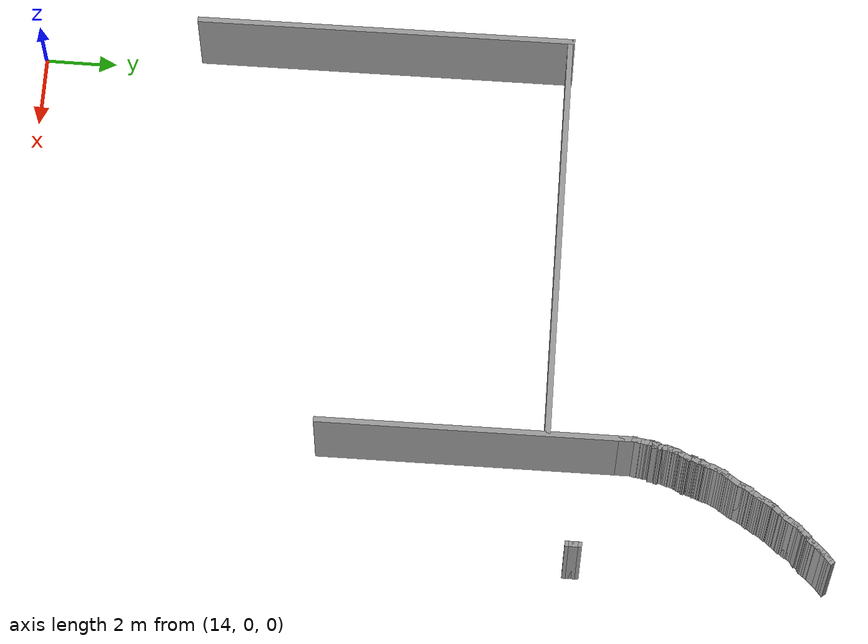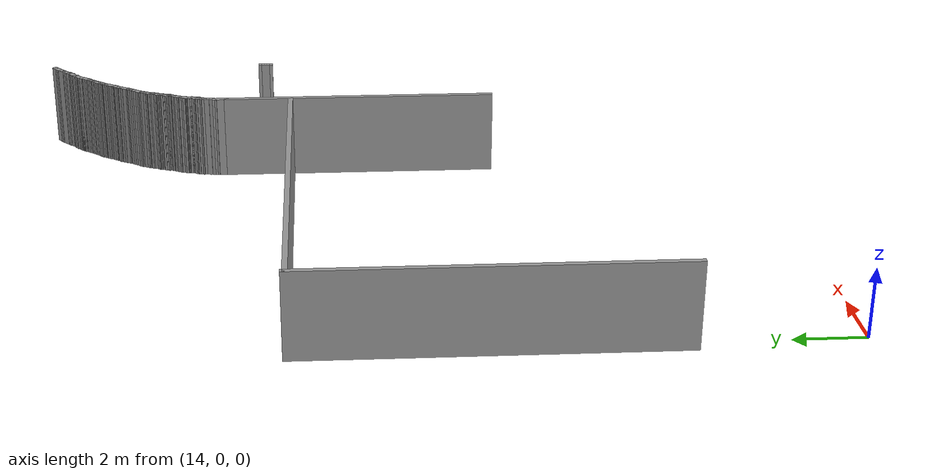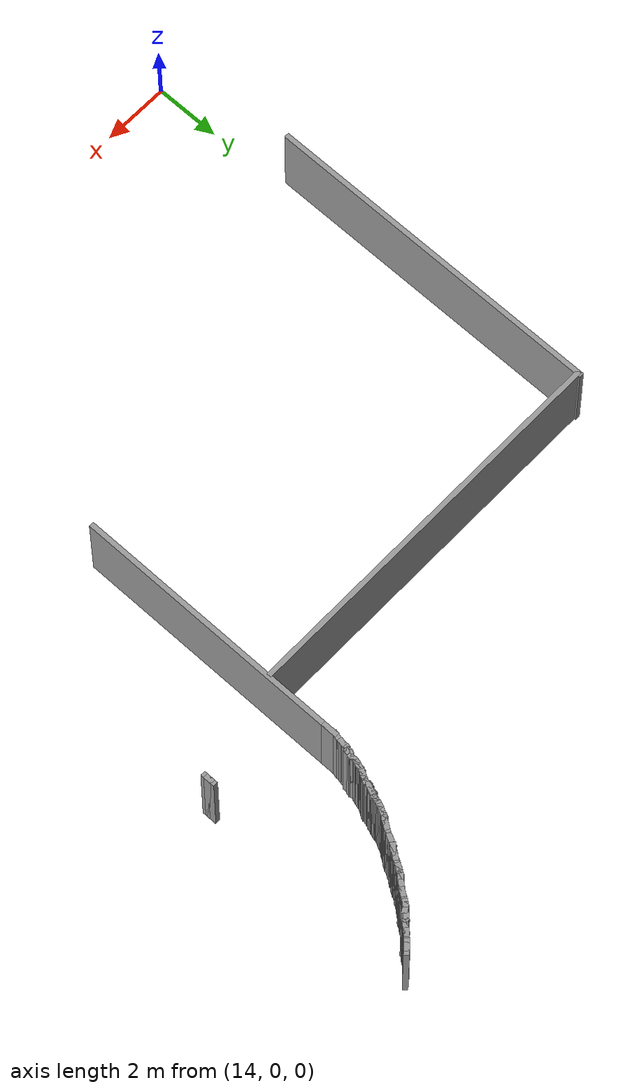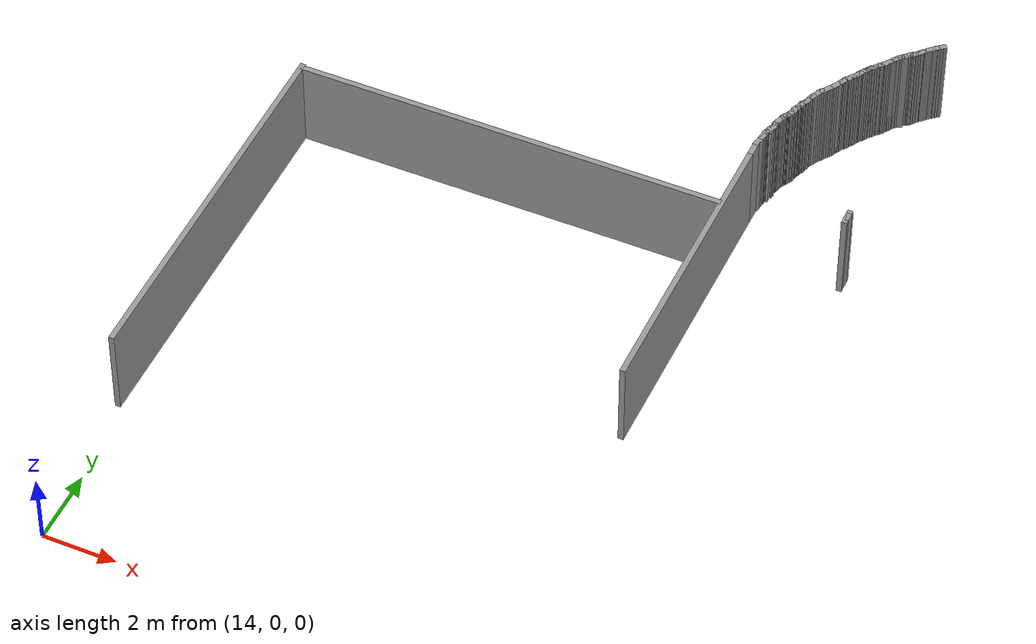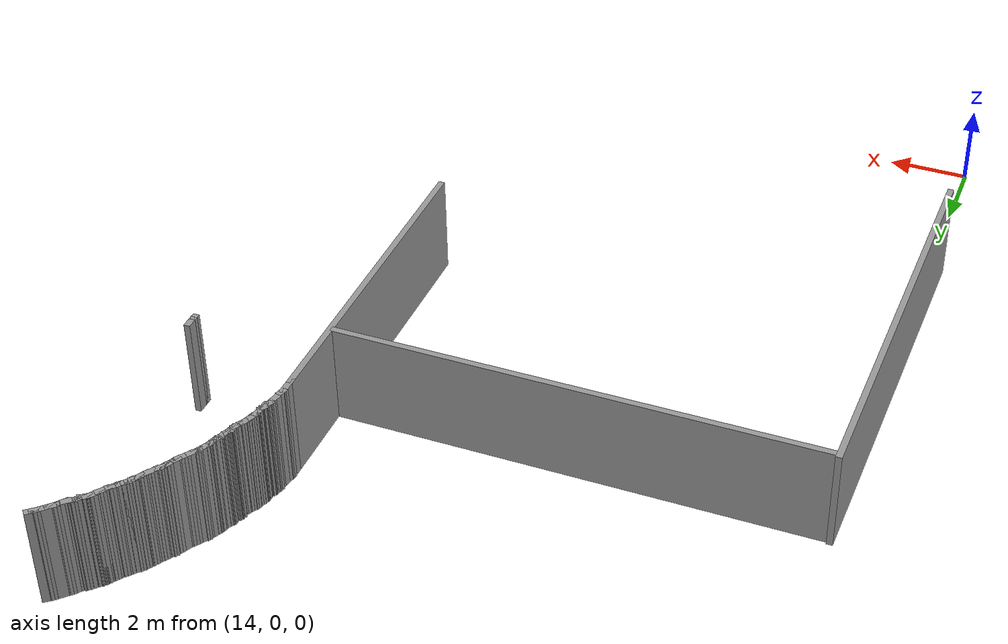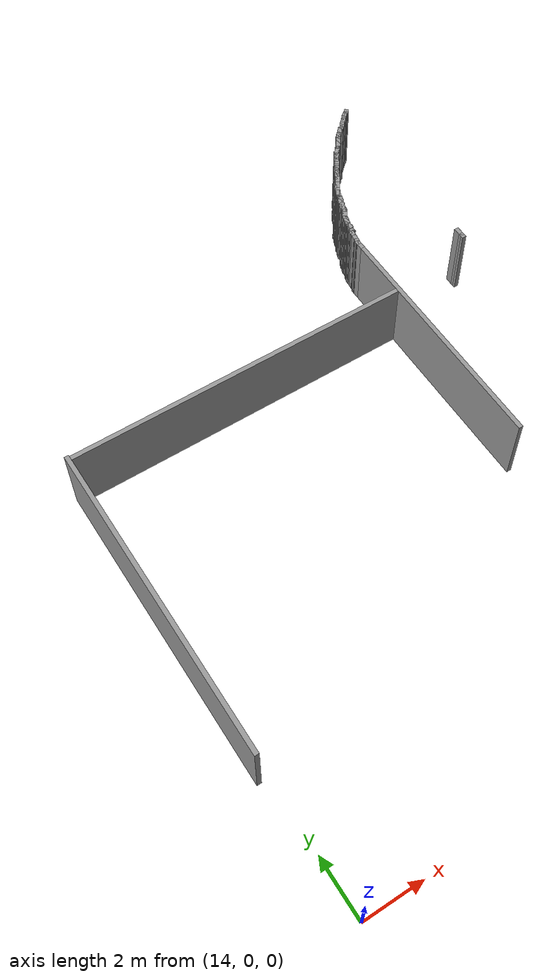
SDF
<sdf version="1.6">
 <model name="draft3">
  <pose>34.2026 -2.81154 0 0 -0 0</pose>
  <link name="Wall_100">
   <collision name="Wall_100_Collision">
    <geometry><box><size>0.221219 0.15 2.5</size></box></geometry>
    <pose>0 0 1.25 0 -0 0</pose>
   </collision>
   <visual name="Wall_100_Visual">
    <pose>0 0 1.25 0 -0 0</pose>
    <geometry><box><size>0.221219 0.15 2.5</size></box></geometry>
    <material>
     <script><uri>file://media/materials/scripts/gazebo.material</uri><name>Gazebo/Grey</name></script>
     <ambient>1 1 1 1</ambient>
    </material>
   </visual>
   <pose>-8.14008 22.0271 0 0 -0 1.19029</pose>
  </link>
  <link name="Wall_101">
   <collision name="Wall_101_Collision">
    <geometry><box><size>0.238716 0.15 2.5</size></box></geometry>
    <pose>0 0 1.25 0 -0 0</pose>
   </collision>
   <visual name="Wall_101_Visual">
    <pose>0 0 1.25 0 -0 0</pose>
    <geometry><box><size>0.238716 0.15 2.5</size></box></geometry>
    <material>
     <script><uri>file://media/materials/scripts/gazebo.material</uri><name>Gazebo/Grey</name></script>
     <ambient>1 1 1 1</ambient>
    </material>
   </visual>
   <pose>-8.10702 22.0998 0 0 -0 1.10715</pose>
  </link>
  <link name="Wall_102">
   <collision name="Wall_102_Collision">
    <geometry><box><size>0.238716 0.15 2.5</size></box></geometry>
    <pose>0 0 1.25 0 -0 0</pose>
   </collision>
   <visual name="Wall_102_Visual">
    <pose>0 0 1.25 0 -0 0</pose>
    <geometry><box><size>0.238716 0.15 2.5</size></box></geometry>
    <material>
     <script><uri>file://media/materials/scripts/gazebo.material</uri><name>Gazebo/Grey</name></script>
     <ambient>1 1 1 1</ambient>
    </material>
   </visual>
   <pose>-8.06734 22.1792 0 0 -0 1.10715</pose>
  </link>
  <link name="Wall_103">
   <collision name="Wall_103_Collision">
    <geometry><box><size>0.250719 0.15 2.5</size></box></geometry>
    <pose>0 0 1.25 0 -0 0</pose>
   </collision>
   <visual name="Wall_103_Visual">
    <pose>0 0 1.25 0 -0 0</pose>
    <geometry><box><size>0.250719 0.15 2.5</size></box></geometry>
    <material>
     <script><uri>file://media/materials/scripts/gazebo.material</uri><name>Gazebo/Grey</name></script>
     <ambient>1 1 1 1</ambient>
    </material>
   </visual>
   <pose>-8.02767 22.2651 0 0 -0 1.1659</pose>
  </link>
  <link name="Wall_104">
   <collision name="Wall_104_Collision">
    <geometry><box><size>0.206109 0.15 2.5</size></box></geometry>
    <pose>0 0 1.25 0 -0 0</pose>
   </collision>
   <visual name="Wall_104_Visual">
    <pose>0 0 1.25 0 -0 0</pose>
    <geometry><box><size>0.206109 0.15 2.5</size></box></geometry>
    <material>
     <script><uri>file://media/materials/scripts/gazebo.material</uri><name>Gazebo/Grey</name></script>
     <ambient>1 1 1 1</ambient>
    </material>
   </visual>
   <pose>-7.98799 22.3312 0 0 -0 0.785398</pose>
  </link>
  <link name="Wall_105">
   <collision name="Wall_105_Collision">
    <geometry><box><size>0.263766 0.15 2.5</size></box></geometry>
    <pose>0 0 1.25 0 -0 0</pose>
   </collision>
   <visual name="Wall_105_Visual">
    <pose>0 0 1.25 0 -0 0</pose>
    <geometry><box><size>0.263766 0.15 2.5</size></box></geometry>
    <material>
     <script><uri>file://media/materials/scripts/gazebo.material</uri><name>Gazebo/Grey</name></script>
     <ambient>1 1 1 1</ambient>
    </material>
   </visual>
   <pose>-7.93509 22.3974 0 0 -0 0.950547</pose>
  </link>
  <link name="Wall_106">
   <collision name="Wall_106_Collision">
    <geometry><box><size>0.29305 0.15 2.5</size></box></geometry>
    <pose>0 0 1.25 0 -0 0</pose>
   </collision>
   <visual name="Wall_106_Visual">
    <pose>0 0 1.25 0 -0 0</pose>
    <geometry><box><size>0.29305 0.15 2.5</size></box></geometry>
    <material>
     <script><uri>file://media/materials/scripts/gazebo.material</uri><name>Gazebo/Grey</name></script>
     <ambient>1 1 1 1</ambient>
    </material>
   </visual>
   <pose>-7.86235 22.5032 0 0 -0 0.982794</pose>
  </link>
  <link name="Wall_107">
   <collision name="Wall_107_Collision">
    <geometry><box><size>0.263766 0.15 2.5</size></box></geometry>
    <pose>0 0 1.25 0 -0 0</pose>
   </collision>
   <visual name="Wall_107_Visual">
    <pose>0 0 1.25 0 -0 0</pose>
    <geometry><box><size>0.263766 0.15 2.5</size></box></geometry>
    <material>
     <script><uri>file://media/materials/scripts/gazebo.material</uri><name>Gazebo/Grey</name></script>
     <ambient>1 1 1 1</ambient>
    </material>
   </visual>
   <pose>-7.78962 22.609 0 0 -0 0.950547</pose>
  </link>
  <link name="Wall_108">
   <collision name="Wall_108_Collision">
    <geometry><box><size>0.268288 0.15 2.5</size></box></geometry>
    <pose>0 0 1.25 0 -0 0</pose>
   </collision>
   <visual name="Wall_108_Visual">
    <pose>0 0 1.25 0 -0 0</pose>
    <geometry><box><size>0.268288 0.15 2.5</size></box></geometry>
    <material>
     <script><uri>file://media/materials/scripts/gazebo.material</uri><name>Gazebo/Grey</name></script>
     <ambient>1 1 1 1</ambient>
    </material>
   </visual>
   <pose>-7.7301 22.7082 0 0 -0 1.10715</pose>
  </link>
  <link name="Wall_109">
   <collision name="Wall_109_Collision">
    <geometry><box><size>0.268288 0.15 2.5</size></box></geometry>
    <pose>0 0 1.25 0 -0 0</pose>
   </collision>
   <visual name="Wall_109_Visual">
    <pose>0 0 1.25 0 -0 0</pose>
    <geometry><box><size>0.268288 0.15 2.5</size></box></geometry>
    <material>
     <script><uri>file://media/materials/scripts/gazebo.material</uri><name>Gazebo/Grey</name></script>
     <ambient>1 1 1 1</ambient>
    </material>
   </visual>
   <pose>-7.6772 22.814 0 0 -0 1.10715</pose>
  </link>
  <link name="Wall_110">
   <collision name="Wall_110_Collision">
    <geometry><box><size>0.227114 0.15 2.5</size></box></geometry>
    <pose>0 0 1.25 0 -0 0</pose>
   </collision>
   <visual name="Wall_110_Visual">
    <pose>0 0 1.25 0 -0 0</pose>
    <geometry><box><size>0.227114 0.15 2.5</size></box></geometry>
    <material>
     <script><uri>file://media/materials/scripts/gazebo.material</uri><name>Gazebo/Grey</name></script>
     <ambient>1 1 1 1</ambient>
    </material>
   </visual>
   <pose>-7.63091 22.8999 0 0 -0 1.03038</pose>
  </link>
  <link name="Wall_111">
   <collision name="Wall_111_Collision">
    <geometry><box><size>0.221219 0.15 2.5</size></box></geometry>
    <pose>0 0 1.25 0 -0 0</pose>
   </collision>
   <visual name="Wall_111_Visual">
    <pose>0 0 1.25 0 -0 0</pose>
    <geometry><box><size>0.221219 0.15 2.5</size></box></geometry>
    <material>
     <script><uri>file://media/materials/scripts/gazebo.material</uri><name>Gazebo/Grey</name></script>
     <ambient>1 1 1 1</ambient>
    </material>
   </visual>
   <pose>-7.59785 22.966 0 0 -0 1.19029</pose>
  </link>
  <link name="Wall_112">
   <collision name="Wall_112_Collision">
    <geometry><box><size>0.262218 0.15 2.5</size></box></geometry>
    <pose>0 0 1.25 0 -0 0</pose>
   </collision>
   <visual name="Wall_112_Visual">
    <pose>0 0 1.25 0 -0 0</pose>
    <geometry><box><size>0.262218 0.15 2.5</size></box></geometry>
    <material>
     <script><uri>file://media/materials/scripts/gazebo.material</uri><name>Gazebo/Grey</name></script>
     <ambient>1 1 1 1</ambient>
    </material>
   </visual>
   <pose>-7.54495 23.0388 0 0 -0 0.785398</pose>
  </link>
  <link name="Wall_113">
   <collision name="Wall_113_Collision">
    <geometry><box><size>0.256623 0.15 2.5</size></box></geometry>
    <pose>0 0 1.25 0 -0 0</pose>
   </collision>
   <visual name="Wall_113_Visual">
    <pose>0 0 1.25 0 -0 0</pose>
    <geometry><box><size>0.256623 0.15 2.5</size></box></geometry>
    <material>
     <script><uri>file://media/materials/scripts/gazebo.material</uri><name>Gazebo/Grey</name></script>
     <ambient>1 1 1 1</ambient>
    </material>
   </visual>
   <pose>-7.47883 23.1247 0 0 -0 1.05165</pose>
  </link>
  <link name="Wall_114">
   <collision name="Wall_114_Collision">
    <geometry><box><size>0.28225 0.15 2.5</size></box></geometry>
    <pose>0 0 1.25 0 -0 0</pose>
   </collision>
   <visual name="Wall_114_Visual">
    <pose>0 0 1.25 0 -0 0</pose>
    <geometry><box><size>0.28225 0.15 2.5</size></box></geometry>
    <material>
     <script><uri>file://media/materials/scripts/gazebo.material</uri><name>Gazebo/Grey</name></script>
     <ambient>1 1 1 1</ambient>
    </material>
   </visual>
   <pose>-7.4127 23.2239 0 0 -0 0.927295</pose>
  </link>
  <link name="Wall_115">
   <collision name="Wall_115_Collision">
    <geometry><box><size>0.268288 0.15 2.5</size></box></geometry>
    <pose>0 0 1.25 0 -0 0</pose>
   </collision>
   <visual name="Wall_115_Visual">
    <pose>0 0 1.25 0 -0 0</pose>
    <geometry><box><size>0.268288 0.15 2.5</size></box></geometry>
    <material>
     <script><uri>file://media/materials/scripts/gazebo.material</uri><name>Gazebo/Grey</name></script>
     <ambient>1 1 1 1</ambient>
    </material>
   </visual>
   <pose>-7.34658 23.3297 0 0 -0 1.10715</pose>
  </link>
  <link name="Wall_116">
   <collision name="Wall_116_Collision">
    <geometry><box><size>0.245367 0.15 2.5</size></box></geometry>
    <pose>0 0 1.25 0 -0 0</pose>
   </collision>
   <visual name="Wall_116_Visual">
    <pose>0 0 1.25 0 -0 0</pose>
    <geometry><box><size>0.245367 0.15 2.5</size></box></geometry>
    <material>
     <script><uri>file://media/materials/scripts/gazebo.material</uri><name>Gazebo/Grey</name></script>
     <ambient>1 1 1 1</ambient>
    </material>
   </visual>
   <pose>-7.29368 23.4223 0 0 -0 0.982794</pose>
  </link>
  <link name="Wall_117">
   <collision name="Wall_117_Collision">
    <geometry><box><size>0.227114 0.15 2.5</size></box></geometry>
    <pose>0 0 1.25 0 -0 0</pose>
   </collision>
   <visual name="Wall_117_Visual">
    <pose>0 0 1.25 0 -0 0</pose>
    <geometry><box><size>0.227114 0.15 2.5</size></box></geometry>
    <material>
     <script><uri>file://media/materials/scripts/gazebo.material</uri><name>Gazebo/Grey</name></script>
     <ambient>1 1 1 1</ambient>
    </material>
   </visual>
   <pose>-7.24739 23.495 0 0 -0 1.03038</pose>
  </link>
  <link name="Wall_118">
   <collision name="Wall_118_Collision">
    <geometry><box><size>0.206109 0.15 2.5</size></box></geometry>
    <pose>0 0 1.25 0 -0 0</pose>
   </collision>
   <visual name="Wall_118_Visual">
    <pose>0 0 1.25 0 -0 0</pose>
    <geometry><box><size>0.206109 0.15 2.5</size></box></geometry>
    <material>
     <script><uri>file://media/materials/scripts/gazebo.material</uri><name>Gazebo/Grey</name></script>
     <ambient>1 1 1 1</ambient>
    </material>
   </visual>
   <pose>-7.20772 23.5479 0 0 -0 0.785398</pose>
  </link>
  <link name="Wall_119">
   <collision name="Wall_119_Collision">
    <geometry><box><size>0.238716 0.15 2.5</size></box></geometry>
    <pose>0 0 1.25 0 -0 0</pose>
   </collision>
   <visual name="Wall_119_Visual">
    <pose>0 0 1.25 0 -0 0</pose>
    <geometry><box><size>0.238716 0.15 2.5</size></box></geometry>
    <material>
     <script><uri>file://media/materials/scripts/gazebo.material</uri><name>Gazebo/Grey</name></script>
     <ambient>1 1 1 1</ambient>
    </material>
   </visual>
   <pose>-7.16804 23.6075 0 0 -0 1.10715</pose>
  </link>
  <link name="Wall_120">
   <collision name="Wall_120_Collision">
    <geometry><box><size>0.224812 0.15 2.5</size></box></geometry>
    <pose>0 0 1.25 0 -0 0</pose>
   </collision>
   <visual name="Wall_120_Visual">
    <pose>0 0 1.25 0 -0 0</pose>
    <geometry><box><size>0.224812 0.15 2.5</size></box></geometry>
    <material>
     <script><uri>file://media/materials/scripts/gazebo.material</uri><name>Gazebo/Grey</name></script>
     <ambient>1 1 1 1</ambient>
    </material>
   </visual>
   <pose>-7.12175 23.6736 0 0 -0 0.785398</pose>
  </link>
  <link name="Wall_121">
   <collision name="Wall_121_Collision">
    <geometry><box><size>0.224812 0.15 2.5</size></box></geometry>
    <pose>0 0 1.25 0 -0 0</pose>
   </collision>
   <visual name="Wall_121_Visual">
    <pose>0 0 1.25 0 -0 0</pose>
    <geometry><box><size>0.224812 0.15 2.5</size></box></geometry>
    <material>
     <script><uri>file://media/materials/scripts/gazebo.material</uri><name>Gazebo/Grey</name></script>
     <ambient>1 1 1 1</ambient>
    </material>
   </visual>
   <pose>-7.06885 23.7265 0 0 -0 0.785398</pose>
  </link>
  <link name="Wall_122">
   <collision name="Wall_122_Collision">
    <geometry><box><size>0.234681 0.15 2.5</size></box></geometry>
    <pose>0 0 1.25 0 -0 0</pose>
   </collision>
   <visual name="Wall_122_Visual">
    <pose>0 0 1.25 0 -0 0</pose>
    <geometry><box><size>0.234681 0.15 2.5</size></box></geometry>
    <material>
     <script><uri>file://media/materials/scripts/gazebo.material</uri><name>Gazebo/Grey</name></script>
     <ambient>1 1 1 1</ambient>
    </material>
   </visual>
   <pose>-7.01595 23.786 0 0 -0 0.896055</pose>
  </link>
  <link name="Wall_123">
   <collision name="Wall_123_Collision">
    <geometry><box><size>0.253291 0.15 2.5</size></box></geometry>
    <pose>0 0 1.25 0 -0 0</pose>
   </collision>
   <visual name="Wall_123_Visual">
    <pose>0 0 1.25 0 -0 0</pose>
    <geometry><box><size>0.253291 0.15 2.5</size></box></geometry>
    <material>
     <script><uri>file://media/materials/scripts/gazebo.material</uri><name>Gazebo/Grey</name></script>
     <ambient>1 1 1 1</ambient>
    </material>
   </visual>
   <pose>-6.95644 23.8587 0 0 -0 0.876058</pose>
  </link>
  <link name="Wall_124">
   <collision name="Wall_124_Collision">
    <geometry><box><size>0.243515 0.15 2.5</size></box></geometry>
    <pose>0 0 1.25 0 -0 0</pose>
   </collision>
   <visual name="Wall_124_Visual">
    <pose>0 0 1.25 0 -0 0</pose>
    <geometry><box><size>0.243515 0.15 2.5</size></box></geometry>
    <material>
     <script><uri>file://media/materials/scripts/gazebo.material</uri><name>Gazebo/Grey</name></script>
     <ambient>1 1 1 1</ambient>
    </material>
   </visual>
   <pose>-6.89032 23.9315 0 0 -0 0.785398</pose>
  </link>
  <link name="Wall_125">
   <collision name="Wall_125_Collision">
    <geometry><box><size>0.274764 0.15 2.5</size></box></geometry>
    <pose>0 0 1.25 0 -0 0</pose>
   </collision>
   <visual name="Wall_125_Visual">
    <pose>0 0 1.25 0 -0 0</pose>
    <geometry><box><size>0.274764 0.15 2.5</size></box></geometry>
    <material>
     <script><uri>file://media/materials/scripts/gazebo.material</uri><name>Gazebo/Grey</name></script>
     <ambient>1 1 1 1</ambient>
    </material>
   </visual>
   <pose>-6.82419 24.0174 0 0 -0 1.0122</pose>
  </link>
  <link name="Wall_126">
   <collision name="Wall_126_Collision">
    <geometry><box><size>0.234681 0.15 2.5</size></box></geometry>
    <pose>0 0 1.25 0 -0 0</pose>
   </collision>
   <visual name="Wall_126_Visual">
    <pose>0 0 1.25 0 -0 0</pose>
    <geometry><box><size>0.234681 0.15 2.5</size></box></geometry>
    <material>
     <script><uri>file://media/materials/scripts/gazebo.material</uri><name>Gazebo/Grey</name></script>
     <ambient>1 1 1 1</ambient>
    </material>
   </visual>
   <pose>-6.76468 24.1034 0 0 -0 0.896055</pose>
  </link>
  <link name="Wall_127">
   <pose>-6.71178 24.1827 0 0 -0 1.05165</pose>
   <visual name="Wall_127_Visual_0">
    <pose>0 0 0.25 0 -0 0</pose>
    <geometry><box><size>0.256623 0.15 0.5</size></box></geometry>
    <material>
     <script><uri>file://media/materials/scripts/gazebo.material</uri><name>Gazebo/Grey</name></script>
     <ambient>1 1 1 1</ambient>
    </material>
   </visual>
   <collision name="Wall_127_Collision_0">
    <geometry><box><size>0.256623 0.15 0.5</size></box></geometry>
    <pose>0 0 0.25 0 -0 0</pose>
   </collision>
  </link>
  <link name="Wall_128">
   <collision name="Wall_128_Collision">
    <geometry><box><size>0.234681 0.15 2.5</size></box></geometry>
    <pose>0 0 1.25 0 -0 0</pose>
   </collision>
   <visual name="Wall_128_Visual">
    <pose>0 0 1.25 0 -0 0</pose>
    <geometry><box><size>0.234681 0.15 2.5</size></box></geometry>
    <material>
     <script><uri>file://media/materials/scripts/gazebo.material</uri><name>Gazebo/Grey</name></script>
     <ambient>1 1 1 1</ambient>
    </material>
   </visual>
   <pose>-6.65888 24.2621 0 0 -0 0.896055</pose>
  </link>
  <link name="Wall_129">
   <collision name="Wall_129_Collision">
    <geometry><box><size>0.224812 0.15 2.5</size></box></geometry>
    <pose>0 0 1.25 0 -0 0</pose>
   </collision>
   <visual name="Wall_129_Visual">
    <pose>0 0 1.25 0 -0 0</pose>
    <geometry><box><size>0.224812 0.15 2.5</size></box></geometry>
    <material>
     <script><uri>file://media/materials/scripts/gazebo.material</uri><name>Gazebo/Grey</name></script>
     <ambient>1 1 1 1</ambient>
    </material>
   </visual>
   <pose>-6.60598 24.3216 0 0 -0 0.785398</pose>
  </link>
  <link name="Wall_130">
   <collision name="Wall_130_Collision">
    <geometry><box><size>0.256623 0.15 2.5</size></box></geometry>
    <pose>0 0 1.25 0 -0 0</pose>
   </collision>
   <visual name="Wall_130_Visual">
    <pose>0 0 1.25 0 -0 0</pose>
    <geometry><box><size>0.256623 0.15 2.5</size></box></geometry>
    <material>
     <script><uri>file://media/materials/scripts/gazebo.material</uri><name>Gazebo/Grey</name></script>
     <ambient>1 1 1 1</ambient>
    </material>
   </visual>
   <pose>-6.53324 24.3745 0 0 -0 0.519146</pose>
  </link>
  <link name="Wall_132">
   <collision name="Wall_132_Collision">
    <geometry><box><size>0.224812 0.15 2.5</size></box></geometry>
    <pose>0 0 1.25 0 -0 0</pose>
   </collision>
   <visual name="Wall_132_Visual">
    <pose>0 0 1.25 0 -0 0</pose>
    <geometry><box><size>0.224812 0.15 2.5</size></box></geometry>
    <material>
     <script><uri>file://media/materials/scripts/gazebo.material</uri><name>Gazebo/Grey</name></script>
     <ambient>1 1 1 1</ambient>
    </material>
   </visual>
   <pose>-6.43405 24.4935 0 0 -0 0.785398</pose>
  </link>
  <link name="Wall_133">
   <collision name="Wall_133_Collision">
    <geometry><box><size>0.245367 0.15 2.5</size></box></geometry>
    <pose>0 0 1.25 0 -0 0</pose>
   </collision>
   <visual name="Wall_133_Visual">
    <pose>0 0 1.25 0 -0 0</pose>
    <geometry><box><size>0.245367 0.15 2.5</size></box></geometry>
    <material>
     <script><uri>file://media/materials/scripts/gazebo.material</uri><name>Gazebo/Grey</name></script>
     <ambient>1 1 1 1</ambient>
    </material>
   </visual>
   <pose>-6.36793 24.5464 0 0 -0 0.588003</pose>
  </link>
  <link name="Wall_134">
   <collision name="Wall_134_Collision">
    <geometry><box><size>0.16 0.15 2.5</size></box></geometry>
    <pose>0 0 1.25 0 -0 0</pose>
   </collision>
   <visual name="Wall_134_Visual">
    <pose>0 0 1.25 0 -0 0</pose>
    <geometry><box><size>0.16 0.15 2.5</size></box></geometry>
    <material>
     <script><uri>file://media/materials/scripts/gazebo.material</uri><name>Gazebo/Grey</name></script>
     <ambient>1 1 1 1</ambient>
    </material>
   </visual>
   <pose>-6.32325 24.5729 0 0 -0 0</pose>
  </link>
  <link name="Wall_135">
   <collision name="Wall_135_Collision">
    <geometry><box><size>0.245822 0.15 2.5</size></box></geometry>
    <pose>0 0 1.25 0 -0 0</pose>
   </collision>
   <visual name="Wall_135_Visual">
    <pose>0 0 1.25 0 -0 0</pose>
    <geometry><box><size>0.245822 0.15 2.5</size></box></geometry>
    <material>
     <script><uri>file://media/materials/scripts/gazebo.material</uri><name>Gazebo/Grey</name></script>
     <ambient>1 1 1 1</ambient>
    </material>
   </visual>
   <pose>-6.28358 24.6059 0 0 -0 0.761598</pose>
  </link>
  <link name="Wall_136">
   <collision name="Wall_136_Collision">
    <geometry><box><size>0.234681 0.15 2.5</size></box></geometry>
    <pose>0 0 1.25 0 -0 0</pose>
   </collision>
   <visual name="Wall_136_Visual">
    <pose>0 0 1.25 0 -0 0</pose>
    <geometry><box><size>0.234681 0.15 2.5</size></box></geometry>
    <material>
     <script><uri>file://media/materials/scripts/gazebo.material</uri><name>Gazebo/Grey</name></script>
     <ambient>1 1 1 1</ambient>
    </material>
   </visual>
   <pose>-6.22245 24.6721 0 0 -0 0.896055</pose>
  </link>
  <link name="Wall_137">
   <collision name="Wall_137_Collision">
    <geometry><box><size>0.234681 0.15 2.5</size></box></geometry>
    <pose>0 0 1.25 0 -0 0</pose>
   </collision>
   <visual name="Wall_137_Visual">
    <pose>0 0 1.25 0 -0 0</pose>
    <geometry><box><size>0.234681 0.15 2.5</size></box></geometry>
    <material>
     <script><uri>file://media/materials/scripts/gazebo.material</uri><name>Gazebo/Grey</name></script>
     <ambient>1 1 1 1</ambient>
    </material>
   </visual>
   <pose>-6.16955 24.7382 0 0 -0 0.896055</pose>
  </link>
  <link name="Wall_138">
   <collision name="Wall_138_Collision">
    <geometry><box><size>0.243515 0.15 2.5</size></box></geometry>
    <pose>0 0 1.25 0 -0 0</pose>
   </collision>
   <visual name="Wall_138_Visual">
    <pose>0 0 1.25 0 -0 0</pose>
    <geometry><box><size>0.243515 0.15 2.5</size></box></geometry>
    <material>
     <script><uri>file://media/materials/scripts/gazebo.material</uri><name>Gazebo/Grey</name></script>
     <ambient>1 1 1 1</ambient>
    </material>
   </visual>
   <pose>-6.11004 24.8043 0 0 -0 0.785398</pose>
  </link>
  <link name="Wall_139">
   <collision name="Wall_139_Collision">
    <geometry><box><size>0.224812 0.15 2.5</size></box></geometry>
    <pose>0 0 1.25 0 -0 0</pose>
   </collision>
   <visual name="Wall_139_Visual">
    <pose>0 0 1.25 0 -0 0</pose>
    <geometry><box><size>0.224812 0.15 2.5</size></box></geometry>
    <material>
     <script><uri>file://media/materials/scripts/gazebo.material</uri><name>Gazebo/Grey</name></script>
     <ambient>1 1 1 1</ambient>
    </material>
   </visual>
   <pose>-6.05053 24.8638 0 0 -0 0.785398</pose>
  </link>
  <link name="Wall_140">
   <collision name="Wall_140_Collision">
    <geometry><box><size>0.262218 0.15 2.5</size></box></geometry>
    <pose>0 0 1.25 0 -0 0</pose>
   </collision>
   <visual name="Wall_140_Visual">
    <pose>0 0 1.25 0 -0 0</pose>
    <geometry><box><size>0.262218 0.15 2.5</size></box></geometry>
    <material>
     <script><uri>file://media/materials/scripts/gazebo.material</uri><name>Gazebo/Grey</name></script>
     <ambient>1 1 1 1</ambient>
    </material>
   </visual>
   <pose>-5.9844 24.93 0 0 -0 0.785398</pose>
  </link>
  <link name="Wall_141">
   <collision name="Wall_141_Collision">
    <geometry><box><size>0.262218 0.15 2.5</size></box></geometry>
    <pose>0 0 1.25 0 -0 0</pose>
   </collision>
   <visual name="Wall_141_Visual">
    <pose>0 0 1.25 0 -0 0</pose>
    <geometry><box><size>0.262218 0.15 2.5</size></box></geometry>
    <material>
     <script><uri>file://media/materials/scripts/gazebo.material</uri><name>Gazebo/Grey</name></script>
     <ambient>1 1 1 1</ambient>
    </material>
   </visual>
   <pose>-5.90505 25.0093 0 0 -0 0.785398</pose>
  </link>
  <link name="Wall_142">
   <collision name="Wall_142_Collision">
    <geometry><box><size>0.234681 0.15 2.5</size></box></geometry>
    <pose>0 0 1.25 0 -0 0</pose>
   </collision>
   <visual name="Wall_142_Visual">
    <pose>0 0 1.25 0 -0 0</pose>
    <geometry><box><size>0.234681 0.15 2.5</size></box></geometry>
    <material>
     <script><uri>file://media/materials/scripts/gazebo.material</uri><name>Gazebo/Grey</name></script>
     <ambient>1 1 1 1</ambient>
    </material>
   </visual>
   <pose>-5.83232 25.0754 0 0 -0 0.674741</pose>
  </link>
  <link name="Wall_143">
   <collision name="Wall_143_Collision">
    <geometry><box><size>0.253291 0.15 2.5</size></box></geometry>
    <pose>0 0 1.25 0 -0 0</pose>
   </collision>
   <visual name="Wall_143_Visual">
    <pose>0 0 1.25 0 -0 0</pose>
    <geometry><box><size>0.253291 0.15 2.5</size></box></geometry>
    <material>
     <script><uri>file://media/materials/scripts/gazebo.material</uri><name>Gazebo/Grey</name></script>
     <ambient>1 1 1 1</ambient>
    </material>
   </visual>
   <pose>-5.75958 25.1349 0 0 -0 0.694738</pose>
  </link>
  <link name="Wall_44">
   <collision name="Wall_44_Collision">
    <geometry><box><size>10.5 0.15 2.5</size></box></geometry>
    <pose>0 0 1.25 0 -0 0</pose>
   </collision>
   <visual name="Wall_44_Visual">
    <pose>0 0 1.25 0 -0 0</pose>
    <geometry><box><size>10.5 0.15 2.5</size></box></geometry>
    <material>
     <script><uri>file://media/materials/scripts/gazebo.material</uri><name>Gazebo/Grey</name></script>
     <ambient>1 1 1 1</ambient>
    </material>
   </visual>
   <pose>-20.5173 12.4768 0 0 0 -1.5708</pose>
  </link>
  <link name="Wall_46">
   <collision name="Wall_46_Collision">
    <geometry><box><size>11.75 0.15 2.5</size></box></geometry>
    <pose>0 0 1.25 0 -0 0</pose>
   </collision>
   <visual name="Wall_46_Visual">
    <pose>0 0 1.25 0 -0 0</pose>
    <geometry><box><size>11.75 0.15 2.5</size></box></geometry>
    <material>
     <script><uri>file://media/materials/scripts/gazebo.material</uri><name>Gazebo/Grey</name></script>
     <ambient>1 1 1 1</ambient>
    </material>
   </visual>
   <pose>-14.6869 17.6053 0 0 -0 3.14159</pose>
  </link>
  <link name="Wall_51">
   <collision name="Wall_51_Collision">
    <geometry><box><size>8.25 0.15 2.5</size></box></geometry>
    <pose>0 0 1.25 0 -0 0</pose>
   </collision>
   <visual name="Wall_51_Visual">
    <pose>0 0 1.25 0 -0 0</pose>
    <geometry><box><size>8.25 0.15 2.5</size></box></geometry>
    <material>
     <script><uri>file://media/materials/scripts/gazebo.material</uri><name>Gazebo/Grey</name></script>
     <ambient>1 1 1 1</ambient>
    </material>
   </visual>
   <pose>-8.7933 15.5141 0 0 -0 1.5708</pose>
  </link>
  <link name="Wall_52">
   <collision name="Wall_52_Collision">
    <geometry><box><size>0.5 0.15 2.5</size></box></geometry>
    <pose>0 0 1.25 0 -0 0</pose>
   </collision>
   <visual name="Wall_52_Visual">
    <pose>0 0 1.25 0 -0 0</pose>
    <geometry><box><size>0.5 0.15 2.5</size></box></geometry>
    <material>
     <script><uri>file://media/materials/scripts/gazebo.material</uri><name>Gazebo/Grey</name></script>
     <ambient>1 1 1 1</ambient>
    </material>
   </visual>
   <pose>-8.7933 19.7391 0 0 -0 1.5708</pose>
  </link>
  <link name="Wall_53">
   <collision name="Wall_53_Collision">
    <geometry><box><size>0.25 0.15 2.5</size></box></geometry>
    <pose>0 0 1.25 0 -0 0</pose>
   </collision>
   <visual name="Wall_53_Visual">
    <pose>0 0 1.25 0 -0 0</pose>
    <geometry><box><size>0.25 0.15 2.5</size></box></geometry>
    <material>
     <script><uri>file://media/materials/scripts/gazebo.material</uri><name>Gazebo/Grey</name></script>
     <ambient>1 1 1 1</ambient>
    </material>
   </visual>
   <pose>-8.78036 19.9624 0 0 -0 1.309</pose>
  </link>
  <link name="Wall_531">
   <collision name="Wall_531_Collision">
    <geometry><box><size>0.25 0.15 2.5</size></box></geometry>
    <pose>0 0 1.25 0 -0 0</pose>
   </collision>
   <visual name="Wall_531_Visual">
    <pose>0 0 1.25 0 -0 0</pose>
    <geometry><box><size>0.25 0.15 2.5</size></box></geometry>
    <material>
     <script><uri>file://media/materials/scripts/gazebo.material</uri><name>Gazebo/Grey</name></script>
     <ambient>1 1 1 1</ambient>
    </material>
   </visual>
   <pose>-5.75024 18.5446 0 0 0 -1.5708</pose>
  </link>
  <link name="Wall_532">
   <collision name="Wall_532_Collision">
    <geometry><box><size>0.25 0.15 2.5</size></box></geometry>
    <pose>0 0 1.25 0 -0 0</pose>
   </collision>
   <visual name="Wall_532_Visual">
    <pose>0 0 1.25 0 -0 0</pose>
    <geometry><box><size>0.25 0.15 2.5</size></box></geometry>
    <material>
     <script><uri>file://media/materials/scripts/gazebo.material</uri><name>Gazebo/Grey</name></script>
     <ambient>1 1 1 1</ambient>
    </material>
   </visual>
   <pose>-5.75024 18.4446 0 0 0 -1.5708</pose>
  </link>
  <link name="Wall_533">
   <collision name="Wall_533_Collision">
    <geometry><box><size>0.25 0.15 2.5</size></box></geometry>
    <pose>0 0 1.25 0 -0 0</pose>
   </collision>
   <visual name="Wall_533_Visual">
    <pose>0 0 1.25 0 -0 0</pose>
    <geometry><box><size>0.25 0.15 2.5</size></box></geometry>
    <material>
     <script><uri>file://media/materials/scripts/gazebo.material</uri><name>Gazebo/Grey</name></script>
     <ambient>1 1 1 1</ambient>
    </material>
   </visual>
   <pose>-5.75024 18.3446 0 0 0 -1.5708</pose>
  </link>
  <link name="Wall_56">
   <collision name="Wall_56_Collision">
    <geometry><box><size>0.15 0.15 2.5</size></box></geometry>
    <pose>0 0 1.25 0 -0 0</pose>
   </collision>
   <visual name="Wall_56_Visual">
    <pose>0 0 1.25 0 -0 0</pose>
    <geometry><box><size>0.15 0.15 2.5</size></box></geometry>
    <material>
     <script><uri>file://media/materials/scripts/gazebo.material</uri><name>Gazebo/Grey</name></script>
     <ambient>1 1 1 1</ambient>
    </material>
   </visual>
   <pose>-8.65095 20.4454 0 0 -0 0</pose>
  </link>
  <link name="Wall_67">
   <collision name="Wall_67_Collision">
    <geometry><box><size>0.230445 0.15 2.5</size></box></geometry>
    <pose>0 0 1.25 0 -0 0</pose>
   </collision>
   <visual name="Wall_67_Visual">
    <pose>0 0 1.25 0 -0 0</pose>
    <geometry><box><size>0.230445 0.15 2.5</size></box></geometry>
    <material>
     <script><uri>file://media/materials/scripts/gazebo.material</uri><name>Gazebo/Grey</name></script>
     <ambient>1 1 1 1</ambient>
    </material>
   </visual>
   <pose>-8.74182 20.1954 0 0 -0 1.40565</pose>
  </link>
  <link name="Wall_68">
   <collision name="Wall_68_Collision">
    <geometry><box><size>0.243515 0.15 2.5</size></box></geometry>
    <pose>0 0 1.25 0 -0 0</pose>
   </collision>
   <visual name="Wall_68_Visual">
    <pose>0 0 1.25 0 -0 0</pose>
    <geometry><box><size>0.243515 0.15 2.5</size></box></geometry>
    <material>
     <script><uri>file://media/materials/scripts/gazebo.material</uri><name>Gazebo/Grey</name></script>
     <ambient>1 1 1 1</ambient>
    </material>
   </visual>
   <pose>-8.72859 20.2814 0 0 -0 1.4289</pose>
  </link>
  <link name="Wall_69">
   <collision name="Wall_69_Collision">
    <geometry><box><size>0.189675 0.15 2.5</size></box></geometry>
    <pose>0 0 1.25 0 -0 0</pose>
   </collision>
   <visual name="Wall_69_Visual">
    <pose>0 0 1.25 0 -0 0</pose>
    <geometry><box><size>0.189675 0.15 2.5</size></box></geometry>
    <material>
     <script><uri>file://media/materials/scripts/gazebo.material</uri><name>Gazebo/Grey</name></script>
     <ambient>1 1 1 1</ambient>
    </material>
   </visual>
   <pose>-8.72198 20.3475 0 0 -0 1.5708</pose>
  </link>
  <link name="Wall_70">
   <collision name="Wall_70_Collision">
    <geometry><box><size>0.238716 0.15 2.5</size></box></geometry>
    <pose>0 0 1.25 0 -0 0</pose>
   </collision>
   <visual name="Wall_70_Visual">
    <pose>0 0 1.25 0 -0 0</pose>
    <geometry><box><size>0.238716 0.15 2.5</size></box></geometry>
    <material>
     <script><uri>file://media/materials/scripts/gazebo.material</uri><name>Gazebo/Grey</name></script>
     <ambient>1 1 1 1</ambient>
    </material>
   </visual>
   <pose>-8.70214 20.407 0 0 -0 1.10715</pose>
  </link>
  <link name="Wall_71">
   <collision name="Wall_71_Collision">
    <geometry><box><size>0.2029 0.15 2.5</size></box></geometry>
    <pose>0 0 1.25 0 -0 0</pose>
   </collision>
   <visual name="Wall_71_Visual">
    <pose>0 0 1.25 0 -0 0</pose>
    <geometry><box><size>0.2029 0.15 2.5</size></box></geometry>
    <material>
     <script><uri>file://media/materials/scripts/gazebo.material</uri><name>Gazebo/Grey</name></script>
     <ambient>1 1 1 1</ambient>
    </material>
   </visual>
   <pose>-8.6823 20.4731 0 0 -0 1.5708</pose>
  </link>
  <link name="Wall_72">
   <collision name="Wall_72_Collision">
    <geometry><box><size>0.191821 0.15 2.5</size></box></geometry>
    <pose>0 0 1.25 0 -0 0</pose>
   </collision>
   <visual name="Wall_72_Visual">
    <pose>0 0 1.25 0 -0 0</pose>
    <geometry><box><size>0.191821 0.15 2.5</size></box></geometry>
    <material>
     <script><uri>file://media/materials/scripts/gazebo.material</uri><name>Gazebo/Grey</name></script>
     <ambient>1 1 1 1</ambient>
    </material>
   </visual>
   <pose>-8.67569 20.5194 0 0 -0 1.24905</pose>
  </link>
  <link name="Wall_73">
   <collision name="Wall_73_Collision">
    <geometry><box><size>0.245367 0.15 2.5</size></box></geometry>
    <pose>0 0 1.25 0 -0 0</pose>
   </collision>
   <visual name="Wall_73_Visual">
    <pose>0 0 1.25 0 -0 0</pose>
    <geometry><box><size>0.245367 0.15 2.5</size></box></geometry>
    <material>
     <script><uri>file://media/materials/scripts/gazebo.material</uri><name>Gazebo/Grey</name></script>
     <ambient>1 1 1 1</ambient>
    </material>
   </visual>
   <pose>-8.64263 20.5789 0 0 -0 0.982794</pose>
  </link>
  <link name="Wall_74">
   <collision name="Wall_74_Collision">
    <geometry><box><size>0.2029 0.15 2.5</size></box></geometry>
    <pose>0 0 1.25 0 -0 0</pose>
   </collision>
   <visual name="Wall_74_Visual">
    <pose>0 0 1.25 0 -0 0</pose>
    <geometry><box><size>0.2029 0.15 2.5</size></box></geometry>
    <material>
     <script><uri>file://media/materials/scripts/gazebo.material</uri><name>Gazebo/Grey</name></script>
     <ambient>1 1 1 1</ambient>
    </material>
   </visual>
   <pose>-8.61618 20.6451 0 0 -0 1.5708</pose>
  </link>
  <link name="Wall_75">
   <collision name="Wall_75_Collision">
    <geometry><box><size>0.17645 0.15 2.5</size></box></geometry>
    <pose>0 0 1.25 0 -0 0</pose>
   </collision>
   <visual name="Wall_75_Visual">
    <pose>0 0 1.25 0 -0 0</pose>
    <geometry><box><size>0.17645 0.15 2.5</size></box></geometry>
    <material>
     <script><uri>file://media/materials/scripts/gazebo.material</uri><name>Gazebo/Grey</name></script>
     <ambient>1 1 1 1</ambient>
    </material>
   </visual>
   <pose>-8.61618 20.6847 0 0 -0 1.5708</pose>
  </link>
  <link name="Wall_76">
   <collision name="Wall_76_Collision">
    <geometry><box><size>0.163225 0.15 2.5</size></box></geometry>
    <pose>0 0 1.25 0 -0 0</pose>
   </collision>
   <visual name="Wall_76_Visual">
    <pose>0 0 1.25 0 -0 0</pose>
    <geometry><box><size>0.163225 0.15 2.5</size></box></geometry>
    <material>
     <script><uri>file://media/materials/scripts/gazebo.material</uri><name>Gazebo/Grey</name></script>
     <ambient>1 1 1 1</ambient>
    </material>
   </visual>
   <pose>-8.61618 20.7046 0 0 -0 1.5708</pose>
  </link>
  <link name="Wall_77">
   <collision name="Wall_77_Collision">
    <geometry><box><size>0.189675 0.15 2.5</size></box></geometry>
    <pose>0 0 1.25 0 -0 0</pose>
   </collision>
   <visual name="Wall_77_Visual">
    <pose>0 0 1.25 0 -0 0</pose>
    <geometry><box><size>0.189675 0.15 2.5</size></box></geometry>
    <material>
     <script><uri>file://media/materials/scripts/gazebo.material</uri><name>Gazebo/Grey</name></script>
     <ambient>1 1 1 1</ambient>
    </material>
   </visual>
   <pose>-8.61618 20.731 0 0 -0 1.5708</pose>
  </link>
  <link name="Wall_78">
   <collision name="Wall_78_Collision">
    <geometry><box><size>0.217435 0.15 2.5</size></box></geometry>
    <pose>0 0 1.25 0 -0 0</pose>
   </collision>
   <visual name="Wall_78_Visual">
    <pose>0 0 1.25 0 -0 0</pose>
    <geometry><box><size>0.217435 0.15 2.5</size></box></geometry>
    <material>
     <script><uri>file://media/materials/scripts/gazebo.material</uri><name>Gazebo/Grey</name></script>
     <ambient>1 1 1 1</ambient>
    </material>
   </visual>
   <pose>-8.60957 20.7839 0 0 -0 1.3734</pose>
  </link>
  <link name="Wall_79">
   <collision name="Wall_79_Collision">
    <geometry><box><size>0.209144 0.15 2.5</size></box></geometry>
    <pose>0 0 1.25 0 -0 0</pose>
   </collision>
   <visual name="Wall_79_Visual">
    <pose>0 0 1.25 0 -0 0</pose>
    <geometry><box><size>0.209144 0.15 2.5</size></box></geometry>
    <material>
     <script><uri>file://media/materials/scripts/gazebo.material</uri><name>Gazebo/Grey</name></script>
     <ambient>1 1 1 1</ambient>
    </material>
   </visual>
   <pose>-8.58973 20.8434 0 0 -0 1.10715</pose>
  </link>
  <link name="Wall_80">
   <collision name="Wall_80_Collision">
    <geometry><box><size>0.217435 0.15 2.5</size></box></geometry>
    <pose>0 0 1.25 0 -0 0</pose>
   </collision>
   <visual name="Wall_80_Visual">
    <pose>0 0 1.25 0 -0 0</pose>
    <geometry><box><size>0.217435 0.15 2.5</size></box></geometry>
    <material>
     <script><uri>file://media/materials/scripts/gazebo.material</uri><name>Gazebo/Grey</name></script>
     <ambient>1 1 1 1</ambient>
    </material>
   </visual>
   <pose>-8.56989 20.9029 0 0 -0 1.3734</pose>
  </link>
  <link name="Wall_81">
   <collision name="Wall_81_Collision">
    <geometry><box><size>0.221219 0.15 2.5</size></box></geometry>
    <pose>0 0 1.25 0 -0 0</pose>
   </collision>
   <visual name="Wall_81_Visual">
    <pose>0 0 1.25 0 -0 0</pose>
    <geometry><box><size>0.221219 0.15 2.5</size></box></geometry>
    <material>
     <script><uri>file://media/materials/scripts/gazebo.material</uri><name>Gazebo/Grey</name></script>
     <ambient>1 1 1 1</ambient>
    </material>
   </visual>
   <pose>-8.55005 20.9691 0 0 -0 1.19029</pose>
  </link>
  <link name="Wall_82">
   <collision name="Wall_82_Collision">
    <geometry><box><size>0.217435 0.15 2.5</size></box></geometry>
    <pose>0 0 1.25 0 -0 0</pose>
   </collision>
   <visual name="Wall_82_Visual">
    <pose>0 0 1.25 0 -0 0</pose>
    <geometry><box><size>0.217435 0.15 2.5</size></box></geometry>
    <material>
     <script><uri>file://media/materials/scripts/gazebo.material</uri><name>Gazebo/Grey</name></script>
     <ambient>1 1 1 1</ambient>
    </material>
   </visual>
   <pose>-8.53022 21.0352 0 0 -0 1.3734</pose>
  </link>
  <link name="Wall_83">
   <collision name="Wall_83_Collision">
    <geometry><box><size>0.197683 0.15 2.5</size></box></geometry>
    <pose>0 0 1.25 0 -0 0</pose>
   </collision>
   <visual name="Wall_83_Visual">
    <pose>0 0 1.25 0 -0 0</pose>
    <geometry><box><size>0.197683 0.15 2.5</size></box></geometry>
    <material>
     <script><uri>file://media/materials/scripts/gazebo.material</uri><name>Gazebo/Grey</name></script>
     <ambient>1 1 1 1</ambient>
    </material>
   </visual>
   <pose>-8.51038 21.0881 0 0 -0 0.982794</pose>
  </link>
  <link name="Wall_84">
   <collision name="Wall_84_Collision">
    <geometry><box><size>0.209144 0.15 2.5</size></box></geometry>
    <pose>0 0 1.25 0 -0 0</pose>
   </collision>
   <visual name="Wall_84_Visual">
    <pose>0 0 1.25 0 -0 0</pose>
    <geometry><box><size>0.209144 0.15 2.5</size></box></geometry>
    <material>
     <script><uri>file://media/materials/scripts/gazebo.material</uri><name>Gazebo/Grey</name></script>
     <ambient>1 1 1 1</ambient>
    </material>
   </visual>
   <pose>-8.48393 21.1344 0 0 -0 1.10715</pose>
  </link>
  <link name="Wall_85">
   <collision name="Wall_85_Collision">
    <geometry><box><size>0.197683 0.15 2.5</size></box></geometry>
    <pose>0 0 1.25 0 -0 0</pose>
   </collision>
   <visual name="Wall_85_Visual">
    <pose>0 0 1.25 0 -0 0</pose>
    <geometry><box><size>0.197683 0.15 2.5</size></box></geometry>
    <material>
     <script><uri>file://media/materials/scripts/gazebo.material</uri><name>Gazebo/Grey</name></script>
     <ambient>1 1 1 1</ambient>
    </material>
   </visual>
   <pose>-8.45748 21.1807 0 0 -0 0.982794</pose>
  </link>
  <link name="Wall_86">
   <collision name="Wall_86_Collision">
    <geometry><box><size>0.268288 0.15 2.5</size></box></geometry>
    <pose>0 0 1.25 0 -0 0</pose>
   </collision>
   <visual name="Wall_86_Visual">
    <pose>0 0 1.25 0 -0 0</pose>
    <geometry><box><size>0.268288 0.15 2.5</size></box></geometry>
    <material>
     <script><uri>file://media/materials/scripts/gazebo.material</uri><name>Gazebo/Grey</name></script>
     <ambient>1 1 1 1</ambient>
    </material>
   </visual>
   <pose>-8.4178 21.2534 0 0 -0 1.10715</pose>
  </link>
  <link name="Wall_87">
   <collision name="Wall_87_Collision">
    <geometry><box><size>0.197683 0.15 2.5</size></box></geometry>
    <pose>0 0 1.25 0 -0 0</pose>
   </collision>
   <visual name="Wall_87_Visual">
    <pose>0 0 1.25 0 -0 0</pose>
    <geometry><box><size>0.197683 0.15 2.5</size></box></geometry>
    <material>
     <script><uri>file://media/materials/scripts/gazebo.material</uri><name>Gazebo/Grey</name></script>
     <ambient>1 1 1 1</ambient>
    </material>
   </visual>
   <pose>-8.37813 21.3261 0 0 -0 0.982794</pose>
  </link>
  <link name="Wall_88">
   <collision name="Wall_88_Collision">
    <geometry><box><size>0.189675 0.15 2.5</size></box></geometry>
    <pose>0 0 1.25 0 -0 0</pose>
   </collision>
   <visual name="Wall_88_Visual">
    <pose>0 0 1.25 0 -0 0</pose>
    <geometry><box><size>0.189675 0.15 2.5</size></box></geometry>
    <material>
     <script><uri>file://media/materials/scripts/gazebo.material</uri><name>Gazebo/Grey</name></script>
     <ambient>1 1 1 1</ambient>
    </material>
   </visual>
   <pose>-8.3649 21.3658 0 0 -0 1.5708</pose>
  </link>
  <link name="Wall_89">
   <collision name="Wall_89_Collision">
    <geometry><box><size>0.216125 0.15 2.5</size></box></geometry>
    <pose>0 0 1.25 0 -0 0</pose>
   </collision>
   <visual name="Wall_89_Visual">
    <pose>0 0 1.25 0 -0 0</pose>
    <geometry><box><size>0.216125 0.15 2.5</size></box></geometry>
    <material>
     <script><uri>file://media/materials/scripts/gazebo.material</uri><name>Gazebo/Grey</name></script>
     <ambient>1 1 1 1</ambient>
    </material>
   </visual>
   <pose>-8.3649 21.4187 0 0 -0 1.5708</pose>
  </link>
  <link name="Wall_90">
   <collision name="Wall_90_Collision">
    <geometry><box><size>0.197683 0.15 2.5</size></box></geometry>
    <pose>0 0 1.25 0 -0 0</pose>
   </collision>
   <visual name="Wall_90_Visual">
    <pose>0 0 1.25 0 -0 0</pose>
    <geometry><box><size>0.197683 0.15 2.5</size></box></geometry>
    <material>
     <script><uri>file://media/materials/scripts/gazebo.material</uri><name>Gazebo/Grey</name></script>
     <ambient>1 1 1 1</ambient>
    </material>
   </visual>
   <pose>-8.35168 21.4716 0 0 -0 0.982794</pose>
  </link>
  <link name="Wall_91">
   <collision name="Wall_91_Collision">
    <geometry><box><size>0.17645 0.15 2.5</size></box></geometry>
    <pose>0 0 1.25 0 -0 0</pose>
   </collision>
   <visual name="Wall_91_Visual">
    <pose>0 0 1.25 0 -0 0</pose>
    <geometry><box><size>0.17645 0.15 2.5</size></box></geometry>
    <material>
     <script><uri>file://media/materials/scripts/gazebo.material</uri><name>Gazebo/Grey</name></script>
     <ambient>1 1 1 1</ambient>
    </material>
   </visual>
   <pose>-8.33845 21.5047 0 0 -0 1.5708</pose>
  </link>
  <link name="Wall_92">
   <collision name="Wall_92_Collision">
    <geometry><box><size>0.227114 0.15 2.5</size></box></geometry>
    <pose>0 0 1.25 0 -0 0</pose>
   </collision>
   <visual name="Wall_92_Visual">
    <pose>0 0 1.25 0 -0 0</pose>
    <geometry><box><size>0.227114 0.15 2.5</size></box></geometry>
    <material>
     <script><uri>file://media/materials/scripts/gazebo.material</uri><name>Gazebo/Grey</name></script>
     <ambient>1 1 1 1</ambient>
    </material>
   </visual>
   <pose>-8.31861 21.551 0 0 -0 1.03038</pose>
  </link>
  <link name="Wall_93">
   <collision name="Wall_93_Collision">
    <geometry><box><size>0.221219 0.15 2.5</size></box></geometry>
    <pose>0 0 1.25 0 -0 0</pose>
   </collision>
   <visual name="Wall_93_Visual">
    <pose>0 0 1.25 0 -0 0</pose>
    <geometry><box><size>0.221219 0.15 2.5</size></box></geometry>
    <material>
     <script><uri>file://media/materials/scripts/gazebo.material</uri><name>Gazebo/Grey</name></script>
     <ambient>1 1 1 1</ambient>
    </material>
   </visual>
   <pose>-8.28555 21.6171 0 0 -0 1.19029</pose>
  </link>
  <link name="Wall_94">
   <collision name="Wall_94_Collision">
    <geometry><box><size>0.2029 0.15 2.5</size></box></geometry>
    <pose>0 0 1.25 0 -0 0</pose>
   </collision>
   <visual name="Wall_94_Visual">
    <pose>0 0 1.25 0 -0 0</pose>
    <geometry><box><size>0.2029 0.15 2.5</size></box></geometry>
    <material>
     <script><uri>file://media/materials/scripts/gazebo.material</uri><name>Gazebo/Grey</name></script>
     <ambient>1 1 1 1</ambient>
    </material>
   </visual>
   <pose>-8.27233 21.6766 0 0 -0 1.5708</pose>
  </link>
  <link name="Wall_95">
   <collision name="Wall_95_Collision">
    <geometry><box><size>0.179572 0.15 2.5</size></box></geometry>
    <pose>0 0 1.25 0 -0 0</pose>
   </collision>
   <visual name="Wall_95_Visual">
    <pose>0 0 1.25 0 -0 0</pose>
    <geometry><box><size>0.179572 0.15 2.5</size></box></geometry>
    <material>
     <script><uri>file://media/materials/scripts/gazebo.material</uri><name>Gazebo/Grey</name></script>
     <ambient>1 1 1 1</ambient>
    </material>
   </visual>
   <pose>-8.26572 21.7163 0 0 -0 1.10715</pose>
  </link>
  <link name="Wall_96">
   <collision name="Wall_96_Collision">
    <geometry><box><size>0.187406 0.15 2.5</size></box></geometry>
    <pose>0 0 1.25 0 -0 0</pose>
   </collision>
   <visual name="Wall_96_Visual">
    <pose>0 0 1.25 0 -0 0</pose>
    <geometry><box><size>0.187406 0.15 2.5</size></box></geometry>
    <material>
     <script><uri>file://media/materials/scripts/gazebo.material</uri><name>Gazebo/Grey</name></script>
     <ambient>1 1 1 1</ambient>
    </material>
   </visual>
   <pose>-8.24588 21.7427 0 0 -0 0.785398</pose>
  </link>
  <link name="Wall_97">
   <collision name="Wall_97_Collision">
    <geometry><box><size>0.221219 0.15 2.5</size></box></geometry>
    <pose>0 0 1.25 0 -0 0</pose>
   </collision>
   <visual name="Wall_97_Visual">
    <pose>0 0 1.25 0 -0 0</pose>
    <geometry><box><size>0.221219 0.15 2.5</size></box></geometry>
    <material>
     <script><uri>file://media/materials/scripts/gazebo.material</uri><name>Gazebo/Grey</name></script>
     <ambient>1 1 1 1</ambient>
    </material>
   </visual>
   <pose>-8.21943 21.789 0 0 -0 1.19029</pose>
  </link>
  <link name="Wall_98">
   <collision name="Wall_98_Collision">
    <geometry><box><size>0.221219 0.15 2.5</size></box></geometry>
    <pose>0 0 1.25 0 -0 0</pose>
   </collision>
   <visual name="Wall_98_Visual">
    <pose>0 0 1.25 0 -0 0</pose>
    <geometry><box><size>0.221219 0.15 2.5</size></box></geometry>
    <material>
     <script><uri>file://media/materials/scripts/gazebo.material</uri><name>Gazebo/Grey</name></script>
     <ambient>1 1 1 1</ambient>
    </material>
   </visual>
   <pose>-8.19298 21.8551 0 0 -0 1.19029</pose>
  </link>
  <link name="Wall_99">
   <collision name="Wall_99_Collision">
    <geometry><box><size>0.259056 0.15 2.5</size></box></geometry>
    <pose>0 0 1.25 0 -0 0</pose>
   </collision>
   <visual name="Wall_99_Visual">
    <pose>0 0 1.25 0 -0 0</pose>
    <geometry><box><size>0.259056 0.15 2.5</size></box></geometry>
    <material>
     <script><uri>file://media/materials/scripts/gazebo.material</uri><name>Gazebo/Grey</name></script>
     <ambient>1 1 1 1</ambient>
    </material>
   </visual>
   <pose>-8.16653 21.9411 0 0 -0 1.32582</pose>
  </link>
  <static>1</static>
 </model>
</sdf>
